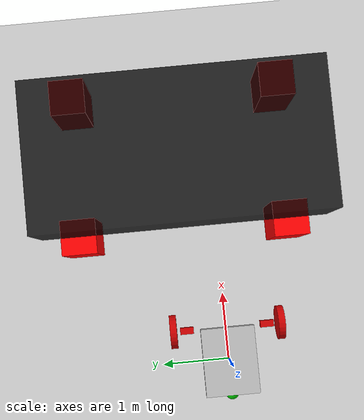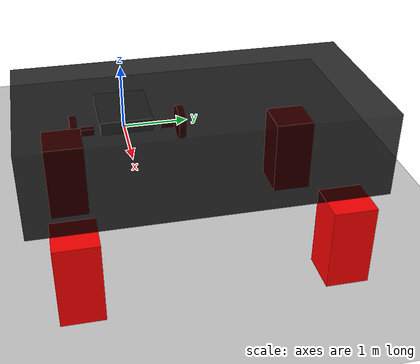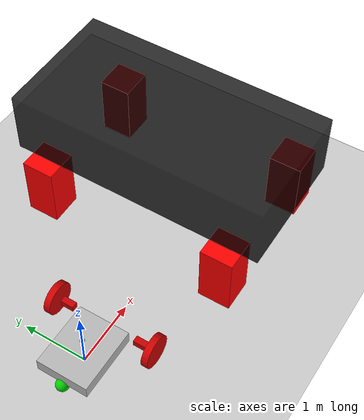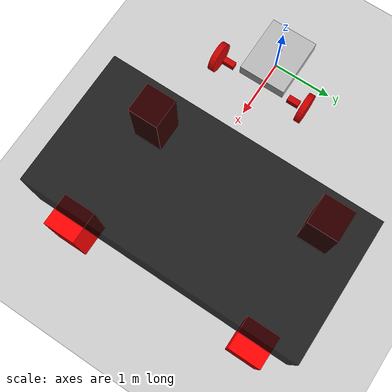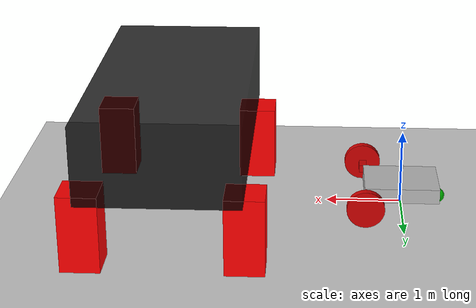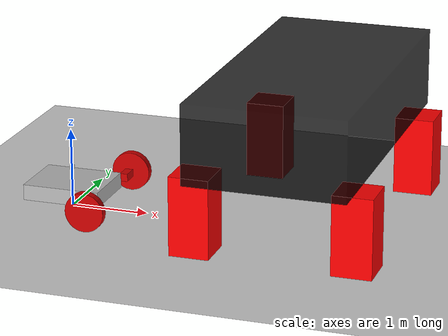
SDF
<?xml version="1.0" ?>
<sdf version="1.6">
  <world name="default">
    <physics name="default_physics" type="ignored">
      <max_step_size>0.001</max_step_size>
      <real_time_factor>1.0</real_time_factor>
    </physics>
    <plugin
      filename="gz-sim-physics-system"
      name="gz::sim::systems::Physics">
    </plugin>
    <light type="directional" name="sun">
      <cast_shadows>true</cast_shadows>
      <pose>0 0 10 0 0 0</pose>
      <diffuse>1 1 1 1</diffuse>
      <specular>0.5 0.5 0.5 1</specular>
      <attenuation>
        <range>1000</range>
        <constant>0.9</constant>
        <linear>0.01</linear>
        <quadratic>0.001</quadratic>
      </attenuation>
      <direction>-0.5 0.1 -0.9</direction>
    </light>
    <gravity>0 0 -9.8</gravity>

    <plugin
      filename="gz-sim-sensors-system"
      name="gz::sim::systems::Sensors">
      <render_engine>ogre2</render_engine>
    </plugin>
    <plugin
      filename="gz-sim-scene-broadcaster-system"
      name="gz::sim::systems::SceneBroadcaster">
    </plugin>

    <gui fullscreen="0">

      <!-- 3D scene -->
      <plugin filename="MinimalScene" name="3D View">
        <gz-gui>
          <title>3D View</title>
          <property type="bool" key="showTitleBar">false</property>
          <property type="string" key="state">docked</property>
        </gz-gui>

        <engine>ogre2</engine>
        <scene>scene</scene>
        <ambient_light>0.4 0.4 0.4</ambient_light>
        <background_color>0.8 0.8 0.8</background_color>
        <camera_pose>-6 0 6 0 0.5 0</camera_pose>
      </plugin>

      <!-- Plugins that add functionality to the scene -->
      <plugin filename="EntityContextMenuPlugin" name="Entity context menu">
        <gz-gui>
          <property key="state" type="string">floating</property>
          <property key="width" type="double">5</property>
          <property key="height" type="double">5</property>
          <property key="showTitleBar" type="bool">false</property>
        </gz-gui>
      </plugin>
      <plugin filename="GzSceneManager" name="Scene Manager">
        <gz-gui>
          <property key="resizable" type="bool">false</property>
          <property key="width" type="double">5</property>
          <property key="height" type="double">5</property>
          <property key="state" type="string">floating</property>
          <property key="showTitleBar" type="bool">false</property>
        </gz-gui>
      </plugin>
      <plugin filename="InteractiveViewControl" name="Interactive view control">
        <gz-gui>
          <property key="resizable" type="bool">false</property>
          <property key="width" type="double">5</property>
          <property key="height" type="double">5</property>
          <property key="state" type="string">floating</property>
          <property key="showTitleBar" type="bool">false</property>
        </gz-gui>
      </plugin>
      <plugin filename="CameraTracking" name="Camera Tracking">
        <gz-gui>
          <property key="resizable" type="bool">false</property>
          <property key="width" type="double">5</property>
          <property key="height" type="double">5</property>
          <property key="state" type="string">floating</property>
          <property key="showTitleBar" type="bool">false</property>
        </gz-gui>
      </plugin>
      <!-- World control -->
      <plugin filename="WorldControl" name="World control">
        <gz-gui>
          <title>World control</title>
          <property type="bool" key="showTitleBar">false</property>
          <property type="bool" key="resizable">false</property>
          <property type="double" key="height">72</property>
          <property type="double" key="z">1</property>

          <property type="string" key="state">floating</property>
          <anchors target="3D View">
            <line own="left" target="left"/>
            <line own="bottom" target="bottom"/>
          </anchors>
        </gz-gui>

        <play_pause>true</play_pause>
        <step>true</step>
        <start_paused>true</start_paused>
        <use_event>true</use_event>

      </plugin>
      <!-- World statistics -->
      <plugin filename="WorldStats" name="World stats">
        <gz-gui>
          <title>World stats</title>
          <property type="bool" key="showTitleBar">false</property>
          <property type="bool" key="resizable">false</property>
          <property type="double" key="height">110</property>
          <property type="double" key="width">290</property>
          <property type="double" key="z">1</property>

          <property type="string" key="state">floating</property>
          <anchors target="3D View">
            <line own="right" target="right"/>
            <line own="bottom" target="bottom"/>
          </anchors>
        </gz-gui>

        <sim_time>true</sim_time>
        <real_time>true</real_time>
        <real_time_factor>true</real_time_factor>
        <iterations>true</iterations>
      </plugin>

      <plugin filename="VisualizeLidar" name="Visualize Lidar">
      </plugin>

      <!-- Inspector -->
      <plugin filename="ComponentInspector" name="Component inspector">
        <gz-gui>
          <property type="string" key="state">docked</property>
        </gz-gui>
      </plugin>

      <!-- Entity tree -->
      <plugin filename="EntityTree" name="Entity tree">
        <gz-gui>
          <property type="string" key="state">docked</property>
        </gz-gui>
      </plugin>
    </gui>

    <model name="ground_plane">
        <static>true</static>
        <link name="link">
            <collision name="collision">
            <geometry>
                <plane>
                <normal>0 0 1</normal>
                </plane>
            </geometry>
            </collision>
            <visual name="visual">
            <geometry>
                <plane>
                <normal>0 0 1</normal>
                <size>100 100</size>
                </plane>
            </geometry>
            <material>
                <ambient>0.8 0.8 0.8 1</ambient>
                <diffuse>0.8 0.8 0.8 1</diffuse>
                <specular>0.8 0.8 0.8 1</specular>
            </material>
            </visual>
        </link>
    </model>

    <!-- 장애물 - 박스 -->
    <model name='obstacle1'>
      <static>true</static>
      <pose>2 2 0.5 0 0 0</pose>
      <link name="box_link">
        <inertial>
          <inertia>
            <ixx>1</ixx>
            <ixy>0</ixy>
            <ixz>0</ixz>
            <iyy>1</iyy>
            <iyz>0</iyz>
            <izz>1</izz>
          </inertia>
          <mass>10</mass>
        </inertial>
        <collision name="box_collision">
          <geometry>
            <box>
              <size>0.5 0.5 1</size>
            </box>
          </geometry>
        </collision>
        <visual name='box_visual'>
          <geometry>
            <box>
              <size>0.5 0.5 1</size>
            </box>
          </geometry>
          <material>
            <ambient>1 0 0 1</ambient>
            <diffuse>1 0 0 1</diffuse>
            <specular>1 0 0 1</specular>
          </material>
        </visual>
      </link>
    </model>
    <model name='obstacle2'>
      <static>true</static>
      <pose>2 -1 0.5 0 0 0</pose>
      <link name="box_link">
        <inertial>
          <inertia>
            <ixx>1</ixx>
            <ixy>0</ixy>
            <ixz>0</ixz>
            <iyy>1</iyy>
            <iyz>0</iyz>
            <izz>1</izz>
          </inertia>
          <mass>10</mass>
        </inertial>
        <collision name="box_collision">
          <geometry>
            <box>
              <size>0.5 0.5 1</size>
            </box>
          </geometry>
        </collision>
        <visual name='box_visual'>
          <geometry>
            <box>
              <size>0.5 0.5 1</size>
            </box>
          </geometry>
          <material>
            <ambient>1 0 0 1</ambient>
            <diffuse>1 0 0 1</diffuse>
            <specular>1 0 0 1</specular>
          </material>
        </visual>
      </link>
    </model>
    <model name='obstacle3'>
      <static>true</static>
      <pose>4 2 0.5 0 0 0</pose>
      <link name="box_link">
        <inertial>
          <inertia>
            <ixx>1</ixx>
            <ixy>0</ixy>
            <ixz>0</ixz>
            <iyy>1</iyy>
            <iyz>0</iyz>
            <izz>1</izz>
          </inertia>
          <mass>10</mass>
        </inertial>
        <collision name="box_collision">
          <geometry>
            <box>
              <size>0.5 0.5 1</size>
            </box>
          </geometry>
        </collision>
        <visual name='box_visual'>
          <geometry>
            <box>
              <size>0.5 0.5 1</size>
            </box>
          </geometry>
          <material>
            <ambient>1 0 0 1</ambient>
            <diffuse>1 0 0 1</diffuse>
            <specular>1 0 0 1</specular>
          </material>
        </visual>
      </link>
    </model>
    <model name='obstacle4'>
      <static>true</static>
      <pose>4 -1 0.5 0 0 0</pose>
      <link name="box_link">
        <inertial>
          <inertia>
            <ixx>1</ixx>
            <ixy>0</ixy>
            <ixz>0</ixz>
            <iyy>1</iyy>
            <iyz>0</iyz>
            <izz>1</izz>
          </inertia>
          <mass>10</mass>
        </inertial>
        <collision name="box_collision">
          <geometry>
            <box>
              <size>0.5 0.5 1</size>
            </box>
          </geometry>
        </collision>
        <visual name='box_visual'>
          <geometry>
            <box>
              <size>0.5 0.5 1</size>
            </box>
          </geometry>
          <material>
            <ambient>1 0 0 1</ambient>
            <diffuse>1 0 0 1</diffuse>
            <specular>1 0 0 1</specular>
          </material>
        </visual>
      </link>
    </model>
    <model name='trailer'>
      <static>true</static>
      <pose>3 0.5 1.5 0 0 0</pose>
      <link name="box_link">
        <inertial>
          <inertia>
            <ixx>1</ixx>
            <ixy>0</ixy>
            <ixz>0</ixz>
            <iyy>1</iyy>
            <iyz>0</iyz>
            <izz>1</izz>
          </inertia>
          <mass>10</mass>
        </inertial>
        <collision name="box_collision">
          <geometry>
            <box>
              <size>2 4 1</size>
            </box>
          </geometry>
        </collision>
        <visual name='box_visual'>
          <geometry>
            <box>
              <size>2 4 1</size>
            </box>
          </geometry>
          <material>
            <ambient>0 0 0 0.8</ambient>
            <diffuse>0 0 0 0.8</diffuse>
            <specular>1 0 0 1</specular>
          </material>
        </visual>
      </link>
    </model>

    <model name="robot">
      <static>false</static>
      <pose>0 0 0.25 0 0 0</pose>

      <link name="base_link">
        <pose>0.0 0.0 0.0 0 0 0</pose>
        <inertial>
          <inertia>
            <ixx>2.501</ixx>
            <ixy>0</ixy>
            <ixz>0</ixz>
            <iyy>2.501</iyy>
            <iyz>0</iyz>
            <izz>5</izz>
          </inertia>
          <mass>1.0</mass>
        </inertial>
        <visual name="base_visual">
          <pose>0.0 0.0 0.0 0 0 0</pose>
          <geometry>
            <box>
              <size>1.0 0.8 0.2</size>
            </box>
          </geometry>
        </visual>
        <collision name="base_collision">
          <pose>0.0 0.0 0.0 0 0 0</pose>
          <geometry>
            <box>
              <size>1.0 0.8 0.2</size>
            </box>
          </geometry>
        </collision>
      </link>

      <link name='caster_wheel'>
        <pose>-0.5 0 -0.15 0 0 0</pose>
        <inertial>
          <inertia>0.0067</inertia>
          <mass>0.2</mass>
        </inertial>
        <visual name='caster_visual'>
          <geometry>
            <sphere>
              <radius>0.1</radius>
            </sphere>
          </geometry>
          <material>
            <ambient>0.8 0.2 0.2 1</ambient>
            <diffuse>0 0.8 0 1</diffuse>
          </material>
        </visual>
        <collision name="caster_collision">
          <geometry>
            <sphere>
              <radius>0.1</radius>
            </sphere>
          </geometry>
        </collision>
      </link>

      <link name="lidar_link">
        <pose>0 0 0.26 0 0 0</pose>
        <inertial>
          <mass>0.01</mass>
          <inertia>
            <ixx>0.000166667</ixx>
            <iyy>0.000166667</iyy>
            <izz>0.000166667</izz>
          </inertia>
        </inertial>
        <collision name="lidar_collision">
          <geometry>
            <box>
              <size>0.05 0.05 0.05</size>
            </box>
          </geometry>
        </collision>
        <visual name="lidar_visual">
          <geometry>
            <box>
              <size>0.05 0.05 0.05</size>
            </box>
          </geometry>
        </visual>
        <sensor name="gpu_lidar" type="gpu_lidar">
          <pose>0 0 0 0 0 0</pose>
          <topic>lidar</topic>
          <update_rate>10</update_rate>
          <lidar>
            <scan>
              <horizontal>
                <samples>360</samples>
                <resolution>1</resolution>
                <min_angle>-3.14</min_angle>
                <max_angle>3.14</max_angle>
              </horizontal>
              <!-- 아래의 sample 수를 1로 하면 2d 라이다가 됨 -->
              <vertical>
                <samples>1</samples>
                <resolution>1</resolution>
                <min_angle>0.0</min_angle>
                <max_angle>0.0</max_angle>
              </vertical>
            </scan>
            <range>
              <min>0.08</min>
              <max>10.0</max>
              <resolution>0.01</resolution>
            </range>
          </lidar>
          <visualize>true</visualize>
        </sensor>
      </link>

      <link name="left_arm">
        <pose>0.5 0.6 0.0 1.5707963 0 0</pose>
        <inertial>
          <inertia>
            <ixx>2.501</ixx>
            <ixy>0</ixy>
            <ixz>0</ixz>
            <iyy>2.501</iyy>
            <iyz>0</iyz>
            <izz>5</izz>
          </inertia>
          <mass>0.5</mass>
        </inertial>
        <visual name="visual">
          <geometry>
            <box>
              <size>0.1 0.1 0.2</size>
            </box>
          </geometry>
          <material>
            <ambient>0.2 0.8 0.2 1</ambient>
            <diffuse>0.8 0 0 1</diffuse>
          </material>
        </visual>
        <collision name="collision">
          <geometry>
            <box>
              <size>0.1 0.1 0.2</size>
            </box>
          </geometry>
        </collision>
      </link>

      <link name="left_wheel">
        <pose>0.5 0.8 0.0 1.5707963 0 0</pose>
        <inertial>
          <inertia>
            <ixx>0.032</ixx>
            <ixy>0</ixy>
            <ixz>0</ixz>
            <iyy>0.032</iyy>
            <iyz>0</iyz>
            <izz>0.00012</izz>
          </inertia>
          <mass>0.5</mass>
        </inertial>
        <visual name="visual">
          <geometry>
            <cylinder>
              <radius>0.25</radius>
              <length>0.1</length>
            </cylinder>
          </geometry>
          <material>
            <ambient>0.2 0.8 0.2 1</ambient>
            <diffuse>0.8 0 0 1</diffuse>
          </material>
        </visual>
        <collision name="collision">
          <geometry>
            <cylinder>
              <radius>0.25</radius>
              <length>0.1</length>
            </cylinder>
          </geometry>
        </collision>
      </link>

      <link name="right_arm">
        <pose>0.5 -0.6 0.0 1.5707963 0 0</pose>
        <inertial>
          <inertia>
            <ixx>2.501</ixx>
            <ixy>0</ixy>
            <ixz>0</ixz>
            <iyy>2.501</iyy>
            <iyz>0</iyz>
            <izz>5</izz>
          </inertia>
          <mass>0.5</mass>
        </inertial>
        <visual name="visual">
          <geometry>
            <box>
              <size>0.1 0.1 0.2</size>
            </box>
          </geometry>
          <material>
            <ambient>0.2 0.8 0.2 1</ambient>
            <diffuse>0.8 0 0 1</diffuse>
          </material>
        </visual>
        <collision name="collision">
          <geometry>
            <box>
              <size>0.1 0.1 0.2</size>
            </box>
          </geometry>
        </collision>
      </link>

      <link name="right_wheel">
        <pose>0.5 -0.8 0.0 1.5707963 0 0</pose>
        <inertial>
          <inertia>
            <ixx>0.032</ixx>
            <ixy>0</ixy>
            <ixz>0</ixz>
            <iyy>0.032</iyy>
            <iyz>0</iyz>
            <izz>0.00012</izz>
          </inertia>
          <mass>0.5</mass>
        </inertial>
        <visual name="visual">
          <geometry>
            <cylinder>
              <radius>0.25</radius>
              <length>0.1</length>
            </cylinder>
          </geometry>
          <material>
            <ambient>0.2 0.8 0.2 1</ambient>
            <diffuse>0.8 0 0 1</diffuse>
          </material>
        </visual>
        <collision name="collision">
          <geometry>
            <cylinder>
              <radius>0.25</radius>
              <length>0.1</length>
            </cylinder>
          </geometry>
        </collision>
      </link>

      <joint name="left_arm_joint" type="revolute">
        <pose>0 0 0.1 0 0 0</pose>
        <parent>base_link</parent>
        <child>left_arm</child>
        <axis>
          <xyz>0 1 0</xyz>
        </axis>
        <!-- 여기는 arm이므로 리미트 걸어줘야 함. 확인할 것. 그리고 플러그인도 포지션 모드로 해줘야 함.  -->
      </joint>
      <joint name="left_wheel_joint" type="revolute">
        <pose>0 0 -0.1 0 0 0</pose>
        <parent>left_arm</parent>
        <child>left_wheel</child>
        <axis>
          <xyz>0 0 -1</xyz>
          <limit>
            <effort>100</effort>
            <velocity>10.0</velocity>
          </limit>
        </axis>
      </joint>

      <joint name="right_arm_joint" type="revolute">
        <pose>0 0 -0.1 0 0 0</pose>
        <parent>base_link</parent>
        <child>right_arm</child>
        <axis>
          <xyz>0 1 0</xyz>
        </axis>
        <!-- 여기는 arm이므로 리미트 걸어줘야 함. 확인할 것. 그리고 플러그인도 포지션 모드로 해줘야 함.  -->
      </joint>
      <joint name="right_wheel_joint" type="revolute">
        <pose>0 0 0 0 0 0</pose>
        <parent>right_arm</parent>
        <child>right_wheel</child>
        <axis>
          <xyz>0 0 -1</xyz>
          <limit>
            <effort>100</effort>
            <velocity>10.0</velocity>
          </limit>
        </axis>
      </joint>

      <joint name="caster_wheel_joint" type="fixed">
        <pose>0 0 0 0 0 0</pose>
        <parent>base_link</parent>
        <child>caster_wheel</child>
      </joint>
      <joint name="lidar_joint" type="fixed">
        <pose>0 0 0 0 0 0</pose>
        <parent>base_link</parent>
        <child>lidar_link</child>
      </joint>

      <plugin
        filename="gz-sim-joint-controller-system"
        name="gz::sim::systems::JointController">
        <joint_name>left_wheel_joint</joint_name>
        <initial_velocity>0.0</initial_velocity>
        <topic>left_wheel_vel</topic>
      </plugin>

      <plugin
        filename="gz-sim-joint-controller-system"
        name="gz::sim::systems::JointController">
        <joint_name>right_wheel_joint</joint_name>
        <initial_velocity>0.0</initial_velocity>
        <topic>right_wheel_vel</topic>
      </plugin>

      <!-- 아래는 팔 관련 플러그인 -->
      <plugin
        filename="gz-sim-joint-position-controller-system"
        name="gz::sim::systems::JointPositionController">
        <joint_name>right_arm_joint</joint_name>
        <topic>right_arm_angle</topic>
        <p_gain>10</p_gain>
        <i_gain>0.1</i_gain>
        <d_gain>0.1</d_gain>
        <i_max>1</i_max>
        <i_min>-1</i_min>
        <cmd_max>1000</cmd_max>
        <cmd_min>-1000</cmd_min>
      </plugin>

      <plugin
        filename="gz-sim-joint-position-controller-system"
        name="gz::sim::systems::JointPositionController">
        <joint_name>left_arm_joint</joint_name>
        <topic>left_arm_angle</topic>
        <p_gain>10</p_gain>
        <i_gain>0.1</i_gain>
        <d_gain>0.1</d_gain>
        <i_max>1</i_max>
        <i_min>-1</i_min>
        <cmd_max>1000</cmd_max>
        <cmd_min>-1000</cmd_min>
      </plugin>

      <!-- 여기에 joint state 발행하는거 넣어야 함.  -->

    </model>
  </world>
</sdf>
